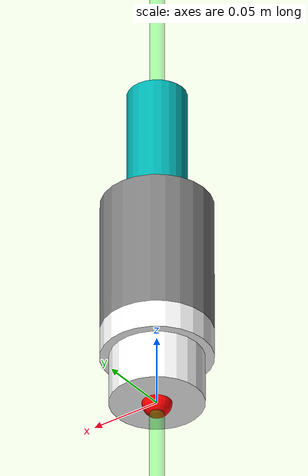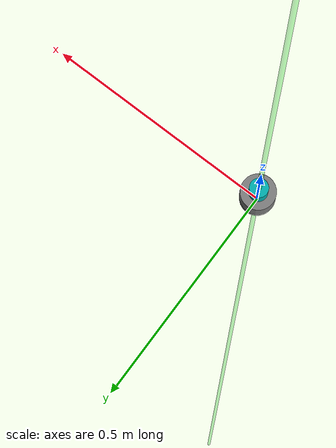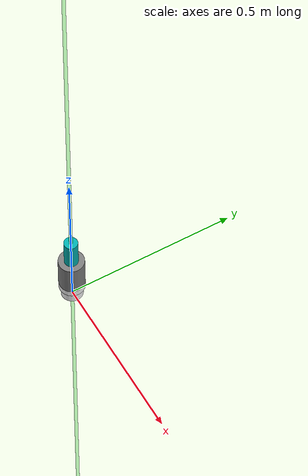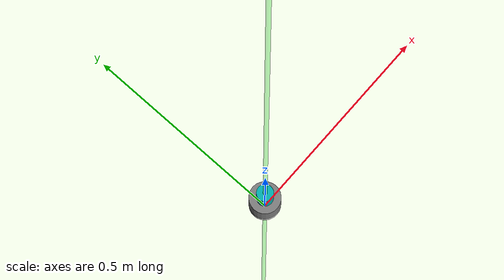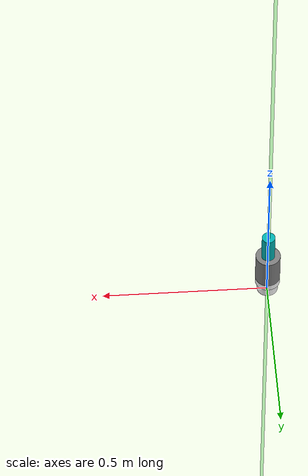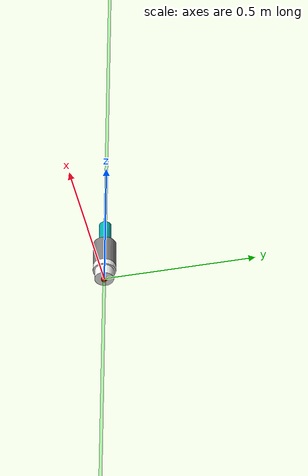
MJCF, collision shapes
<mujoco model="robotiq_hande">
  <!-- hand-e URDF from https://github.com/cambel/robotiq -->
  <!-- then yuni loaded it in mujoco to convert to xml and used online tools to convert dae to stl -->
  <!-- then a bunch of manual copy and pasting from other gripper examples -->

  <asset>
    <mesh name="hand-e" file="meshes/robotiq_hand_e_gripper/hand-e.stl" />
    <mesh name="finger_1" file="meshes/robotiq_hand_e_gripper/finger_1.stl" />
    <mesh name="finger_2" file="meshes/robotiq_hand_e_gripper/finger_2.stl" />

    <!-- peg visual gemoetries in the order of: circle, square, triangle, rectangle-->
    <mesh name="guriguri-large-plate-peg" file="meshes/robotiq_hand_e_gripper/guriguri-large-plate-peg-triangle-primitive.stl"/>

    <mesh name="guriguri-large-plate-peg-collision" file="meshes/robotiq_hand_e_gripper/guriguri-large-plate-peg-triangle-primitive.stl"/>
  </asset>

  <worldbody>
    <body name="gripper_base" pos="0 0 0">
      <geom type="cylinder" pos="0 0 0.0175" size="0.0315 0.0175" group="1" name="gripper_base_visual" rgba="1 1 1 1" />
      <geom type="cylinder" pos="0 0 0.045" size="0.0375 0.01" group="1" rgba="1 1 1 1" />
      <geom type="cylinder" pos="0 0 0.0175" size="0.0315 0.0175" group="0" name="gripper_base_collision"/>
      <geom type="cylinder" pos="0 0 0.045" size="0.0375 0.01" group="0" rgba="1 1 1 1" />
      <site name="ft_frame" pos="0 0 0" size="0.01 0.01 0.01" rgba="1 0 0 1" type="sphere" group="1" />
      <!-- This site was added for visualization. -->
      <body name="eef" pos="0 0 0">
        <site name="grip_site" pos="0 0 0" size="0.01 0.01 0.01" rgba="1 0 0 0.5" type="sphere" group="1" />
        <site name="ee_x" pos="0.1 0 0" size="0.005 .1" quat="0.707105  0 0.707108 0 " rgba="1 0 0 0" type="cylinder" group="1" />
        <site name="ee_y" pos="0 0.1 0" size="0.005 .1" quat="0.707105 0.707108 0 0" rgba="0 1 0 0" type="cylinder" group="1" />
        <site name="ee_z" pos="0 0 0.1" size="0.005 .1" quat="1 0 0 0" rgba="0 0 1 0" type="cylinder" group="1" />
        <!-- This site was added for visualization. -->
        <site name="grip_site_cylinder" pos="0 0 0" size="0.005 10" rgba="0 1 0 0.3" type="cylinder" group="1" />
      </body>
      <body name="right_gripper" pos="0 0 0.055">
        <!-- Note: x and y translation observed to be neglible due to moment arm induced by gripper length causing mostly rotation -->
        <joint name="flex_wrist_z" axis="0 0 1" type="slide" stiffness="1000" damping="1.0" />
        <joint name="flex_wrist_rx" axis="1 0 0" type="hinge" stiffness="0.5" damping="0.005" />
        <joint name="flex_wrist_ry" axis="0 1 0" type="hinge" stiffness="0.5" damping="0.005" />
        <joint name="flex_wrist_rz" axis="0 0 1" type="hinge" stiffness="5" damping="1.0" />
        <!-- inertia manually copied over from URDF, not autogenerated via mujoco -->
        <inertial pos="0 0 0.04607" mass="0.86387" diaginertia="1017560E-9 1028041E-9 489810E-9" />
        <geom type="mesh" quat="0.7071 0 0 0.7071" contype="0" conaffinity="0" group="1" mesh="hand-e" name="hand_visual" rgba="0.1 0.1 0.1 1" />
        <geom type="cylinder" pos="0 0 0.049" size="0.0375 0.049" group="0" name="hand_collision" />
        <body name="peg" pos="0 0 0.099">
          <inertial pos="0.0 0.0 0.04" mass="0.03" diaginertia="1e-5 1e-5 1e-5" />
          <geom type="mesh" name="finger1_visual" pos="0 -0.0125 0.0" quat="0.7071 0 0 0.7071" contype="0" conaffinity="0" group="1" mesh="finger_1" rgba="1 1 1 1" />
          <geom type="mesh" name="finger2_visual" pos="0 0.0125 0.0" quat="0.7071 0 0 0.7071" contype="0" conaffinity="0" group="1" mesh="finger_2" rgba="1 1 1 1" />

          <!-- peg visual and collision geometries in the order of: circle, square, triangle, rectangle-->
          <!-- uncomment the two subsequent lines for the desired peg type -->
          <geom type="cylinder" name="peg_visual" pos="0.0 0.0 0.04" quat="0 1 0 0" size="0.02 0.045" contype="0" conaffinity="0" group="1" rgba="0 0.7 0.7 1"/>
          <geom type="cylinder" name="peg_collision" pos="0.0 0.0 0.04" quat="0 1 0 0" size="0.02 0.045" group="0" conaffinity="1" contype="0" solref="0.02 1" friction="1 0.005 0.0001" condim="4"/>

          <site name="peg_ft_frame" pos="0.0 0.0 0.07" size="0.01 0.01 0.01" rgba="1 0 0 0.5" type="sphere" group="1" />
        </body>
      </body>
    </body>
  </worldbody>

  <sensor>
    <force name="force_ee" site="ft_frame" />
    <torque name="torque_ee" site="ft_frame" />
    <torque name="torque_peg" site="peg_ft_frame" />
  </sensor>

</mujoco>
